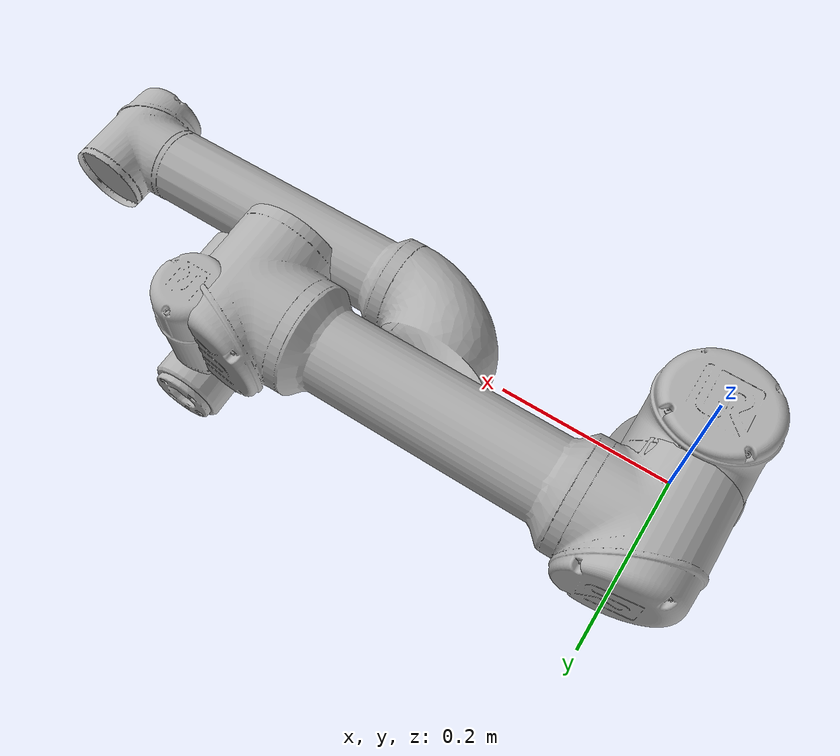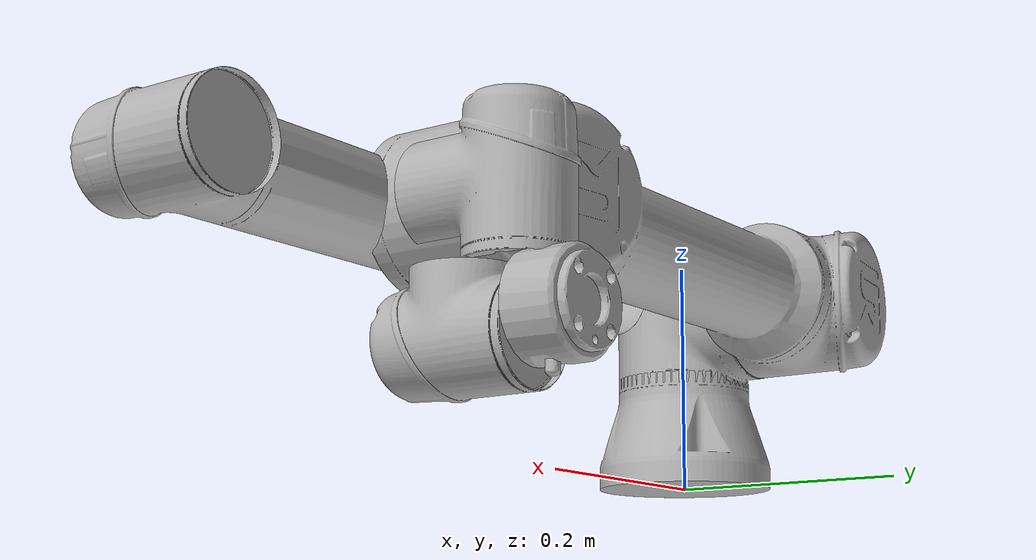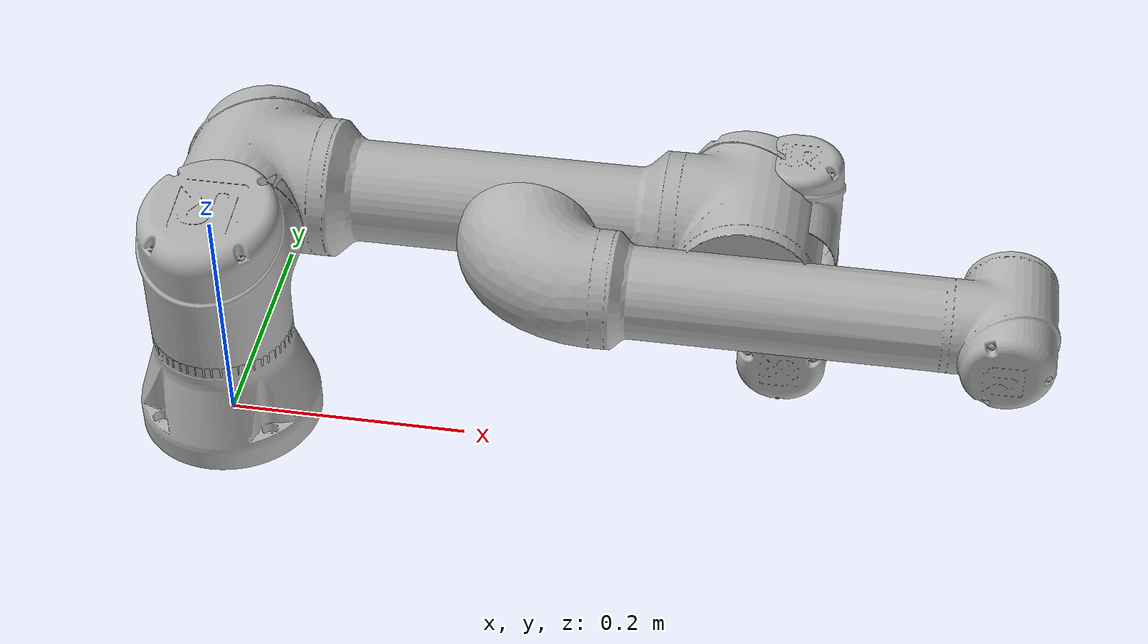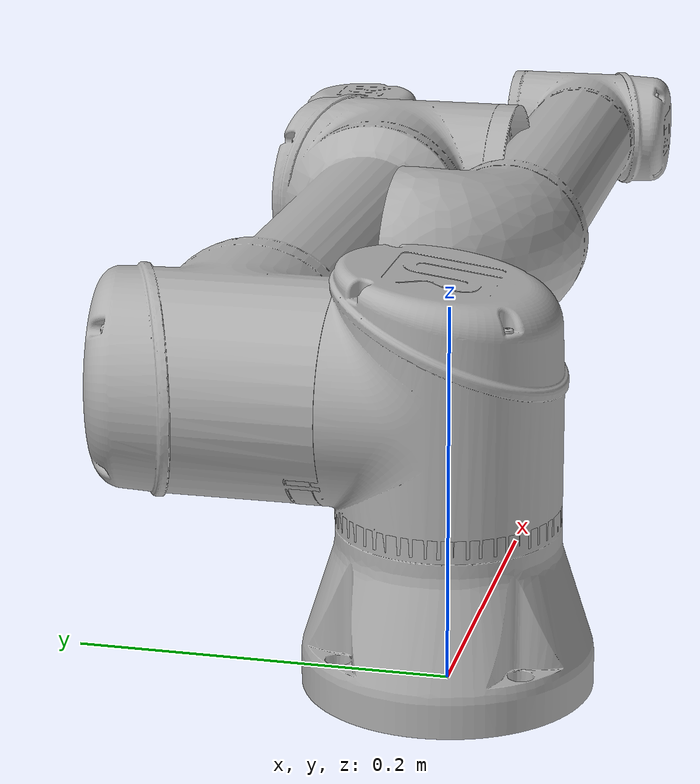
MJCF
<?xml version='1.0' encoding='UTF-8'?>
<mujoco model="ur3">
  <compiler angle="radian" meshdir="../meshes/visual/"/>

  <asset>
    <mesh name="base" content_type="model/stl" file="base.stl"/>
    <mesh name="shoulder" content_type="model/stl" file="shoulder.stl"/>
    <mesh name="upperarm" content_type="model/stl" file="upperarm.stl"/>
    <mesh name="forearm" content_type="model/stl" file="forearm.stl"/>
    <mesh name="wrist1" content_type="model/stl" file="wrist1.stl"/>
    <mesh name="wrist2" content_type="model/stl" file="wrist2.stl"/>
    <mesh name="wrist3" content_type="model/stl" file="wrist3.stl"/>
  </asset>

  <worldbody>
    <body name="base_link">
      <inertial pos="0 0 0" quat="0.5 0.5 -0.5 0.5" mass="2" diaginertia="0.005625 0.00305317 0.00305317"/>
      <geom type="mesh" rgba="0.7 0.7 0.7 1" mesh="base" contype="1" conaffinity="0"/>
      <body name="shoulder_link" pos="0 0 0.1519">
        <inertial pos="0.000000e+00 0.000000e+00 0.000000e+00" mass="1.690000e+00" diaginertia="7.658552e-03 7.658552e-03 5.247625e-03"/>
        <joint name="shoulder_pan_joint" pos="0 0 0" axis="0 0 1" range="-6.28319 6.28319" actuatorfrcrange="-330 330" armature="3.896782e-01"/>
        <geom type="mesh" rgba="0.7 0.7 0.7 1" mesh="shoulder" contype="1" conaffinity="0"/>
        <body name="upper_arm_link" pos="0 0.1198 0" quat="0.707107 0 0.707107 0">
          <inertial pos="0.000000e+00 0.000000e+00 1.218250e-01" mass="3.110000e+00" diaginertia="2.129389e-02 2.129389e-02 9.241375e-03"/>
          <joint name="shoulder_lift_joint" pos="0 0 0" axis="0 1 0" range="-6.28319 6.28319" actuatorfrcrange="-330 330" armature="3.896782e-01"/>
          <geom type="mesh" rgba="0.7 0.7 0.7 1" mesh="upperarm" contype="1" conaffinity="0"/>
          <body name="forearm_link" pos="0 -0.0925 0.24365">
            <inertial pos="0.000000e+00 0.000000e+00 1.066250e-01" mass="1.610000e+00" diaginertia="6.890423e-03 6.890423e-03 3.936250e-03"/>
            <joint name="elbow_joint" pos="0 0 0" axis="0 1 0" range="-3.14159 3.14159" actuatorfrcrange="-150 150" armature="2.172813e-01"/>
            <geom type="mesh" rgba="0.7 0.7 0.7 1" mesh="forearm" contype="1" conaffinity="0"/>
            <body name="wrist_1_link" pos="0 0 0.21325" quat="0.707107 0 0.707107 0">
              <inertial pos="0.000000e+00 0.000000e+00 0.000000e+00" quat="0.5 0.5 -0.5 0.5" mass="8.000000e-01" diaginertia="2.315229e-03 2.150229e-03 2.092650e-03"/>
              <joint name="wrist_1_joint" pos="0 0 0" axis="0 1 0" range="-6.28319 6.28319" actuatorfrcrange="-54 54" armature="6.151203e-02"/>
              <geom type="mesh" rgba="0.7 0.7 0.7 1" mesh="wrist1" contype="1" conaffinity="0"/>
              <body name="wrist_2_link" pos="0 0.08505 0">
                <inertial pos="0.000000e+00 0.000000e+00 0.000000e+00" quat="0.5 0.5 -0.5 0.5" mass="8.000000e-01" diaginertia="2.315229e-03 2.150229e-03 2.092650e-03"/>
                <joint name="wrist_2_joint" pos="0 0 0" axis="0 0 1" range="-6.28319 6.28319" actuatorfrcrange="-54 54" armature="6.151203e-02"/>
                <geom type="mesh" rgba="0.7 0.7 0.7 1" mesh="wrist2" contype="1" conaffinity="0"/>
                <body name="wrist_3_link" pos="0 0 0.08535">
                  <inertial pos="0.000000e+00 0.000000e+00 0.000000e+00" quat="0.5 0.5 -0.5 0.5" mass="5.000000e-01" diaginertia="1.123979e-03 1.051791e-03 9.835870e-04"/>
                  <joint name="wrist_3_joint" pos="0 0 0" axis="0 1 0" range="-6.28319 6.28319" actuatorfrcrange="-54 54" armature="6.151203e-02"/>
                  <geom type="mesh" rgba="0.7 0.7 0.7 1" mesh="wrist3" contype="1" conaffinity="0"/>
                  <body name="ee_link" pos="0 0.0819 0" quat="0.707107 0 0 0.707107">
                    <geom size="0.005 0.005 0.005" pos="-0.01 0 0" type="box" contype="1" conaffinity="0"/>
                  </body>
                  <body name="tool0" pos="0 0.0819 0" quat="0.707107 -0.707107 0 0"/>
                </body>
              </body>
            </body>
          </body>
        </body>
      </body>
      <body name="base" quat="0 0 0 -1"/>
    </body>
  </worldbody>
<actuator><general name="shoulder_pan_joint_CRA-RI60-70-PRO-S-101" joint="shoulder_pan_joint" gear="101.000000" ctrlrange="-66.000 66.000"/><general name="shoulder_lift_joint_CRA-RI60-70-PRO-S-101" joint="shoulder_lift_joint" gear="101.000000" ctrlrange="-66.000 66.000"/><general name="elbow_joint_CRA-RI60-80-NH-101" joint="elbow_joint" gear="101.000000" ctrlrange="-48.000 48.000"/><general name="wrist_1_joint_CRA-RI40-52-PRO-101" joint="wrist_1_joint" gear="101.000000" ctrlrange="-11.000 11.000"/><general name="wrist_2_joint_CRA-RI40-52-PRO-101" joint="wrist_2_joint" gear="101.000000" ctrlrange="-11.000 11.000"/><general name="wrist_3_joint_CRA-RI40-52-PRO-101" joint="wrist_3_joint" gear="101.000000" ctrlrange="-11.000 11.000"/></actuator></mujoco>
